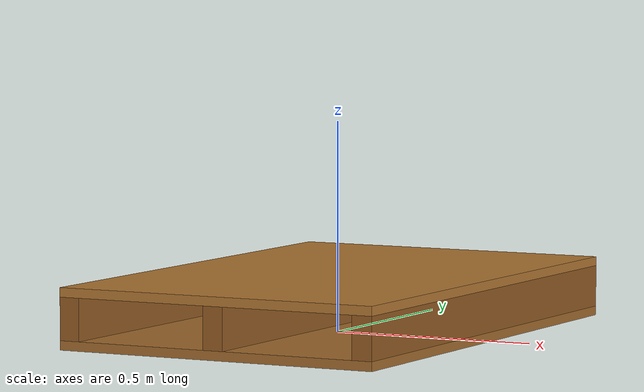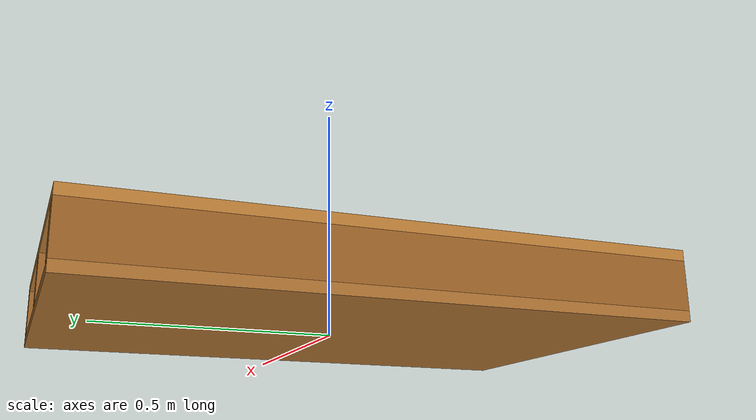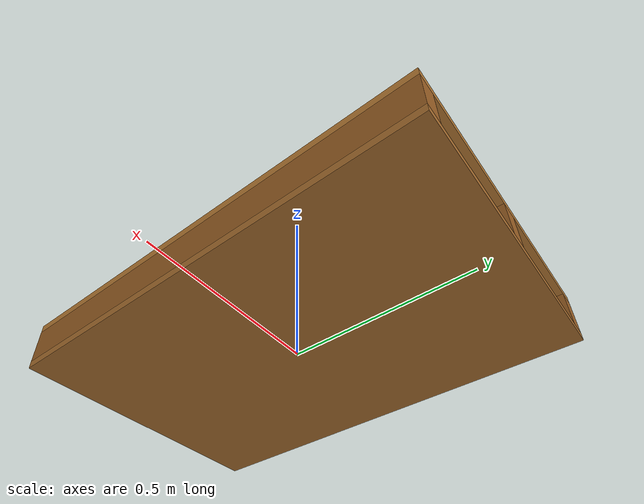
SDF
<?xml version="1.0"?>
<sdf version="1.10">
  <model name="euro_pallet">
    <static>false</static>
    <self_collide>false</self_collide>
    <allow_auto_disable>false</allow_auto_disable>

    <link name="body">
      <gravity>true</gravity>
      <kinematic>false</kinematic>

      <inertial>
        <pose>0 0 0.072 0 0 0</pose>
        <mass>25</mass>
        <inertia>
          <ixx>3.07216082337</ixx>
          <ixy>0</ixy>
          <ixz>0</ixz>
          <iyy>1.70896776228</iyy>
          <iyz>0</iyz>
          <izz>4.63680693891</izz>
        </inertia>
      </inertial>

      <!-- Bottom deck: centre at 11 mm above the model origin. -->
      <collision name="bottom_deck_collision">
        <pose>0 0 0.011 0 0 0</pose>
        <geometry><box><size>0.8 1.2 0.022</size></box></geometry>
        <surface>
          <friction><ode><mu>0.65</mu><mu2>0.65</mu2></ode></friction>
          <bounce><restitution_coefficient>0</restitution_coefficient><threshold>100000</threshold></bounce>
          <contact><ode><kp>1000000</kp><kd>100</kd><max_vel>1</max_vel><min_depth>0.0005</min_depth></ode></contact>
        </surface>
      </collision>
      <visual name="bottom_deck_visual">
        <pose>0 0 0.011 0 0 0</pose>
        <geometry><box><size>0.8 1.2 0.022</size></box></geometry>
        <material>
          <ambient>0.46 0.28 0.10 1</ambient>
          <diffuse>0.64 0.42 0.18 1</diffuse>
          <specular>0.03 0.03 0.03 1</specular>
        </material>
      </visual>

      <!--
        Three 50 x 100 mm longitudinal stringers. They run along Y, so
        the two fork channels are open from either 1200 mm end of the pallet.
      -->
      <collision name="left_stringer_collision">
        <pose>-0.375 0 0.072 0 0 0</pose>
        <geometry><box><size>0.05 1.2 0.1</size></box></geometry>
        <surface>
          <friction><ode><mu>0.65</mu><mu2>0.65</mu2></ode></friction>
          <bounce><restitution_coefficient>0</restitution_coefficient><threshold>100000</threshold></bounce>
          <contact><ode><kp>1000000</kp><kd>100</kd><max_vel>1</max_vel><min_depth>0.0005</min_depth></ode></contact>
        </surface>
      </collision>
      <visual name="left_stringer_visual">
        <pose>-0.375 0 0.072 0 0 0</pose>
        <geometry><box><size>0.05 1.2 0.1</size></box></geometry>
        <material>
          <ambient>0.42 0.25 0.09 1</ambient>
          <diffuse>0.58 0.36 0.14 1</diffuse>
          <specular>0.03 0.03 0.03 1</specular>
        </material>
      </visual>

      <collision name="centre_stringer_collision">
        <pose>0 0 0.072 0 0 0</pose>
        <geometry><box><size>0.05 1.2 0.1</size></box></geometry>
        <surface>
          <friction><ode><mu>0.65</mu><mu2>0.65</mu2></ode></friction>
          <bounce><restitution_coefficient>0</restitution_coefficient><threshold>100000</threshold></bounce>
          <contact><ode><kp>1000000</kp><kd>100</kd><max_vel>1</max_vel><min_depth>0.0005</min_depth></ode></contact>
        </surface>
      </collision>
      <visual name="centre_stringer_visual">
        <pose>0 0 0.072 0 0 0</pose>
        <geometry><box><size>0.05 1.2 0.1</size></box></geometry>
        <material>
          <ambient>0.42 0.25 0.09 1</ambient>
          <diffuse>0.58 0.36 0.14 1</diffuse>
          <specular>0.03 0.03 0.03 1</specular>
        </material>
      </visual>

      <collision name="right_stringer_collision">
        <pose>0.375 0 0.072 0 0 0</pose>
        <geometry><box><size>0.05 1.2 0.1</size></box></geometry>
        <surface>
          <friction><ode><mu>0.65</mu><mu2>0.65</mu2></ode></friction>
          <bounce><restitution_coefficient>0</restitution_coefficient><threshold>100000</threshold></bounce>
          <contact><ode><kp>1000000</kp><kd>100</kd><max_vel>1</max_vel><min_depth>0.0005</min_depth></ode></contact>
        </surface>
      </collision>
      <visual name="right_stringer_visual">
        <pose>0.375 0 0.072 0 0 0</pose>
        <geometry><box><size>0.05 1.2 0.1</size></box></geometry>
        <material>
          <ambient>0.42 0.25 0.09 1</ambient>
          <diffuse>0.58 0.36 0.14 1</diffuse>
          <specular>0.03 0.03 0.03 1</specular>
        </material>
      </visual>

      <!-- Top deck: top face is exactly z=144 mm. -->
      <collision name="top_deck_collision">
        <pose>0 0 0.133 0 0 0</pose>
        <geometry><box><size>0.8 1.2 0.022</size></box></geometry>
        <surface>
          <friction><ode><mu>0.65</mu><mu2>0.65</mu2></ode></friction>
          <bounce><restitution_coefficient>0</restitution_coefficient><threshold>100000</threshold></bounce>
          <contact><ode><kp>1000000</kp><kd>100</kd><max_vel>1</max_vel><min_depth>0.0005</min_depth></ode></contact>
        </surface>
      </collision>
      <visual name="top_deck_visual">
        <pose>0 0 0.133 0 0 0</pose>
        <geometry><box><size>0.8 1.2 0.022</size></box></geometry>
        <material>
          <ambient>0.50 0.31 0.11 1</ambient>
          <diffuse>0.70 0.47 0.20 1</diffuse>
          <specular>0.03 0.03 0.03 1</specular>
        </material>
      </visual>
    </link>
  </model>
</sdf>
